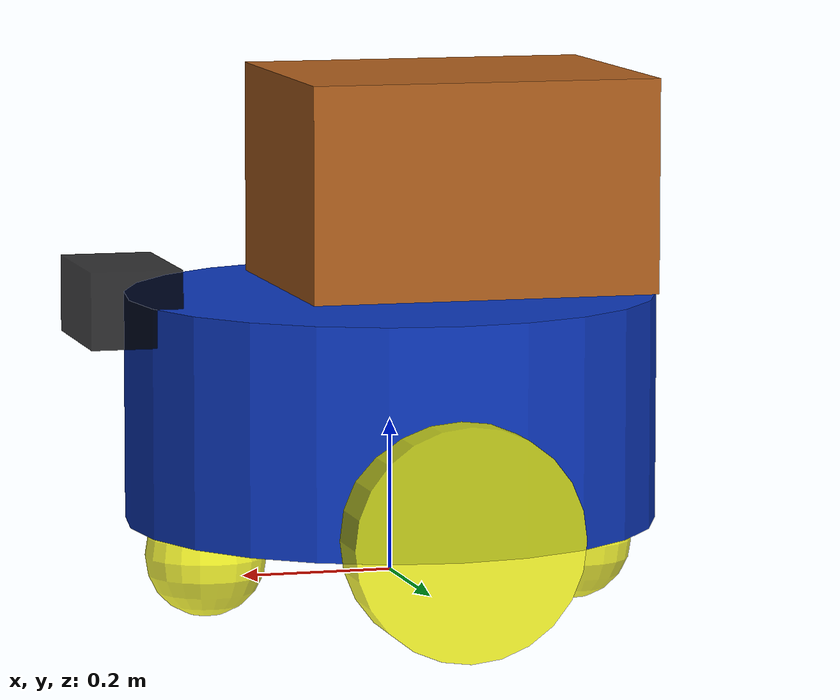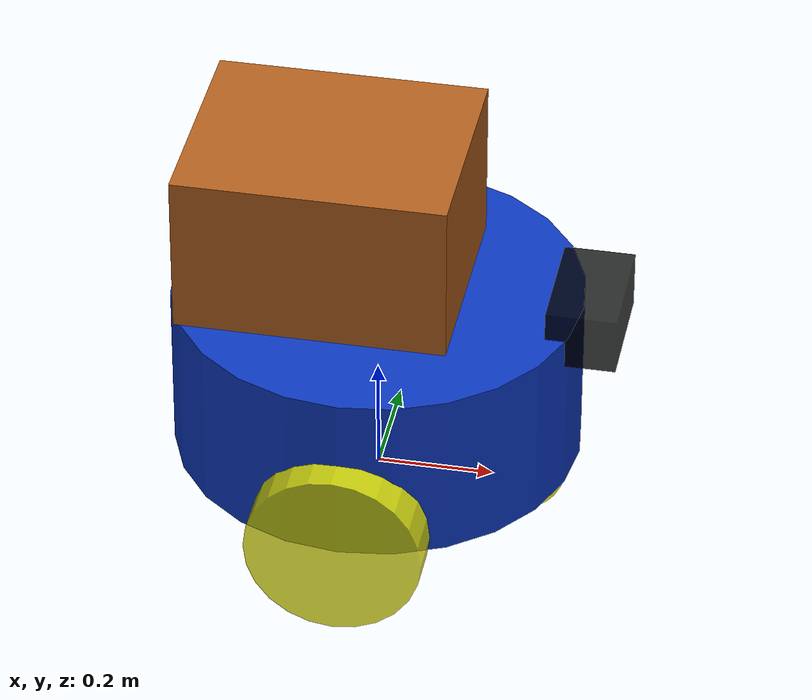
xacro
<?xml version="1.0"?>
<robot xmlns:xacro="http://www.ros.org/wiki/xacro" name="delivery_robot">
    <xacro:include filename="$(find delivery_robot_description)/models/delivery_robot/base.urdf.xacro" />
    <!-- sensors -->
    <xacro:include filename="$(find delivery_robot_description)/models/delivery_robot/sensor/camera.urdf.xacro" />
    <xacro:include filename="$(find delivery_robot_description)/models/delivery_robot/sensor/imu.urdf.xacro" />
    <xacro:include filename="$(find delivery_robot_description)/models/delivery_robot/sensor/laser.urdf.xacro" />
    <!-- actuators -->
    <xacro:include filename="$(find delivery_robot_description)/models/delivery_robot/actuator/wheel.urdf.xacro" />
    <xacro:include filename="$(find delivery_robot_description)/models/delivery_robot/actuator/caster.urdf.xacro" />
    <!-- plugins -->
    <xacro:include filename="$(find delivery_robot_description)/models/delivery_robot/plugin/gz_control_plugin.xacro" />
    <xacro:include filename="$(find delivery_robot_description)/models/delivery_robot/plugin/gz_sensor_plugin.xacro" />

    <xacro:base_xacro length="0.30" radius="0.35" />

    <xacro:imu_xacro xyz="0.0 0.0 0.18"/>
    <xacro:laser_xacro xyz="0.0 0.0 0.28"/>
    <xacro:rgbd_camera_xacro xyz="0.36 0.0 0.15"/>

    <xacro:wheel_xacro wheel_name="left_wheel" xyz="0 0.36 -0.12" />
    <xacro:wheel_xacro wheel_name="right_wheel" xyz="0 -0.36 -0.12" />
    <xacro:caster_xacro caster_name="front_wheel" xyz="0.25 0 -0.19" />
    <xacro:caster_xacro caster_name="back_wheel" xyz="-0.25 0 -0.19" />

    <xacro:gz_control_plugin />
    <xacro:gz_sensor_plugin />
</robot>

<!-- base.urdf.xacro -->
<robot xmlns:xacro="http://www.ros.org/wiki/xacro">
  <xacro:include filename="$(find delivery_robot_description)/models/delivery_robot/common_inertia.xacro"/>

  <xacro:macro name="base_xacro" params="length radius">
    <link name="base_footprint"/>

    <link name="base_link">
      <visual>
        <geometry>
          <cylinder radius="${radius}" length="${length}"/>
        </geometry>
        <material name="blue">
          <color rgba="0.05 0.22 0.75 1.0"/>
        </material>
      </visual>
      <collision>
        <geometry>
          <cylinder radius="${radius}" length="${length}"/>
        </geometry>
      </collision>
      <xacro:cylinder_inertia m="1.5" r="${radius}" h="${length}"/>
    </link>

    <joint name="base_footprint_joint" type="fixed">
      <parent link="base_footprint"/>
      <child link="base_link"/>
      <origin xyz="0 0 0.22" rpy="0 0 0"/>
    </joint>

    <link name="parcel_link">
      <visual>
        <geometry>
          <box size="0.46 0.38 0.28"/>
        </geometry>
        <material name="parcel_brown">
          <color rgba="0.70 0.38 0.12 1.0"/>
        </material>
      </visual>
      <collision>
        <geometry>
          <box size="0.46 0.38 0.28"/>
        </geometry>
      </collision>
      <xacro:box_inertia m="1.0" w="0.46" h="0.38" d="0.28"/>
    </link>

    <joint name="parcel_joint" type="fixed">
      <parent link="base_link"/>
      <child link="parcel_link"/>
      <origin xyz="-0.08 0 0.30" rpy="0 0 0"/>
    </joint>
  </xacro:macro>
</robot>

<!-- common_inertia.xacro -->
<robot xmlns:xacro="http://www.ros.org/wiki/xacro">
  <xacro:macro name="box_inertia" params="m w h d">
    <inertial>
      <mass value="${m}"/>
      <inertia
        ixx="${m * (h * h + d * d) / 12.0}" ixy="0" ixz="0"
        iyy="${m * (w * w + d * d) / 12.0}" iyz="0"
        izz="${m * (w * w + h * h) / 12.0}"/>
    </inertial>
  </xacro:macro>

  <xacro:macro name="cylinder_inertia" params="m r h">
    <inertial>
      <mass value="${m}"/>
      <inertia
        ixx="${m * (3 * r * r + h * h) / 12.0}" ixy="0" ixz="0"
        iyy="${m * (3 * r * r + h * h) / 12.0}" iyz="0"
        izz="${m * r * r / 2.0}"/>
    </inertial>
  </xacro:macro>

  <xacro:macro name="sphere_inertia" params="m r">
    <inertial>
      <mass value="${m}"/>
      <inertia
        ixx="${2 * m * r * r / 5.0}" ixy="0" ixz="0"
        iyy="${2 * m * r * r / 5.0}" iyz="0"
        izz="${2 * m * r * r / 5.0}"/>
    </inertial>
  </xacro:macro>
</robot>

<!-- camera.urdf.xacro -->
<robot xmlns:xacro="http://www.ros.org/wiki/xacro">
    <xacro:include filename="$(find delivery_robot_description)/models/delivery_robot/common_inertia.xacro" />

    <xacro:macro name="rgbd_camera_xacro" params="xyz">
        <link name="rgbd_camera_link">
            <visual>
                <origin xyz="0.0 0.0 0.0" rpy="0.0 0.0 0.0"/>
                <geometry>
                    <box size="0.12 0.20 0.10"/>
                </geometry>
                <material name="black">
                    <color rgba="0.0 0.0 0.0 0.8"/>
                </material>
            </visual>
            <collision>
                <geometry>
                    <box size="0.12 0.20 0.10"/>
                </geometry>
            </collision>
            <xacro:box_inertia m="0.2" w="0.12" h="0.20" d="0.10"/>
        </link>

        <link name="rgbd_camera_optical_link"/>

        <joint name="rgbd_camera_joint" type="fixed">
            <parent link="base_link"/>
            <child link="rgbd_camera_link"/>
            <origin xyz="${xyz}" rpy="0.0 0.0 0.0"/>
        </joint>
        <joint name="rgbd_camera_optical_joint" type="fixed">
            <parent link="rgbd_camera_link"/>
            <child link="rgbd_camera_optical_link"/>
            <origin xyz="0 0 0" rpy="${-pi / 2.0} 0 ${-pi / 2.0}"/>
        </joint>
    </xacro:macro>
</robot>

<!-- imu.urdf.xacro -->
<robot xmlns:xacro="http://www.ros.org/wiki/xacro">
    <xacro:include filename="$(find delivery_robot_description)/models/delivery_robot/common_inertia.xacro" />

    <xacro:macro name="imu_xacro" params="xyz">
        <link name="imu_link">

            <visual>
                <origin xyz="0.0 0.0 0.0" rpy="0.0 0.0 0.0"/>

                <geometry>
                    <box size="0.02 0.02 0.02"/>
                </geometry>

                <material name="black">
                    <color rgba="0.0 0.0 0.0 0.5"/>
                </material>
            </visual>

            <collision>
                <origin xyz="0.0 0.0 0.0" rpy="0.0 0.0 0.0"/>

                <geometry>
                    <box size="0.02 0.02 0.02"/>
                </geometry>

                <material name="black">
                    <color rgba="0.0 0.0 0.0 0.5"/>
                </material>
            </collision>

            <xacro:box_inertia m="0.05" w="0.02" h="0.02" d="0.02" />

        </link>

        <joint name="imu_joint" type="fixed">
            <parent link="base_link"/>
            <child link="imu_link"/>
            <origin xyz="${xyz}" rpy="0.0 0.0 0.0"/>
        </joint>
    </xacro:macro>
</robot>

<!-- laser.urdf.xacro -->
<robot xmlns:xacro="http://www.ros.org/wiki/xacro">
    <xacro:include filename="$(find delivery_robot_description)/models/delivery_robot/common_inertia.xacro" />

    <xacro:macro name="laser_xacro" params="xyz">

        <link name="laser_cylinder_link">

            <visual>
                <origin xyz="0.0 0.0 0.0" rpy="0.0 0.0 0.0"/>

                <geometry>
                    <cylinder radius="0.01" length="0.10"/>
                </geometry>

                <material name="black">
                    <color rgba="0.0 0.0 0.0 1.0"/>
                </material>
            </visual>

            <collision>
                <origin xyz="0.0 0.0 0.0" rpy="0.0 0.0 0.0"/>

                <geometry>
                    <cylinder radius="0.01" length="0.10"/>
                </geometry>

                <material name="black">
                    <color rgba="0.0 0.0 0.0 1.0"/>
                </material>
            </collision>

            <xacro:cylinder_inertia m="0.05" r="0.01" h="0.10"/>

        </link>

        <link name="laser_link">

            <visual>
                <origin xyz="0.0 0.0 0.0" rpy="0.0 0.0 0.0"/>

                <geometry>
                    <cylinder radius="0.02" length="0.02"/>
                </geometry>

                <material name="black">
                    <color rgba="0.0 0.0 0.0 1.0"/>
                </material>
            </visual>

            <collision>
                <origin xyz="0.0 0.0 0.0" rpy="0.0 0.0 0.0"/>

                <geometry>
                    <cylinder radius="0.02" length="0.02"/>
                </geometry>

                <material name="black">
                    <color rgba="0.0 0.0 0.0 1.0"/>
                </material>
            </collision>

            <xacro:cylinder_inertia m="0.10" r="0.02" h="0.02"/>

        </link>

        <joint name="laser_joint" type="fixed">
            <parent link="laser_cylinder_link"/>
            <child link="laser_link"/>
            <origin xyz="0.0 0.0 0.05" rpy="0.0 0.0 0.0"/>
        </joint>

        <joint name="laser_cylinder_joint" type="fixed">
            <parent link="base_link"/>
            <child link="laser_cylinder_link"/>
            <origin xyz="${xyz}" rpy="0.0 0.0 0.0"/>
        </joint>
    </xacro:macro>
</robot>

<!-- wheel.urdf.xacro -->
<robot xmlns:xacro="http://www.ros.org/wiki/xacro">
    <xacro:include filename="$(find delivery_robot_description)/models/delivery_robot/common_inertia.xacro" />

    <xacro:macro name="wheel_xacro" params="wheel_name xyz">
        <link name="${wheel_name}_link">

            <visual>
                <origin xyz="0.0 0.0 0.0" rpy="1.57079 0.0 0.0"/>

                <geometry>
                    <cylinder radius="0.15" length="0.08"/>
                </geometry>

                <material name="yellow">
                    <color rgba="1.0 1.0 0.0 0.8"/>
                </material>
            </visual>

            <collision>
                <origin xyz="0.0 0.0 0.0" rpy="1.57079 0.0 0.0"/>

                <geometry>
                    <cylinder radius="0.15" length="0.08"/>
                </geometry>

                <material name="yellow">
                    <color rgba="1.0 1.0 0.0 0.8"/>
                </material>
            </collision>

            <xacro:cylinder_inertia m="1.0" r="0.15" h="0.08"/>

        </link>

        <joint name="${wheel_name}_joint" type="continuous">
            <parent link="base_link"/>
            <child link="${wheel_name}_link"/>
            <origin xyz="${xyz}" rpy="0.0 0.0 0.0"/>
            <axis xyz="0 1 0"/>
        </joint>

        <gazebo reference="${wheel_name}_joint">
            <mu1 value = "20.0"/>
            <mu2 value = "20.0"/>
            <kp value = "1000000000.0"/>
            <kd value = "1.0"/>
        </gazebo>
    </xacro:macro>
</robot>

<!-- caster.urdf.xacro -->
<robot xmlns:xacro="http://www.ros.org/wiki/xacro">
    <xacro:include filename="$(find delivery_robot_description)/models/delivery_robot/common_inertia.xacro" />

    <xacro:macro name="caster_xacro" params="caster_name xyz">
        <link name="${caster_name}_link">

            <visual>
                <origin xyz="0.0 0.0 0.0" rpy="0.0 0.0 0.0"/>

                <geometry>
                    <sphere radius="0.08"/>
                </geometry>

                <material name="yellow">
                    <color rgba="1.0 1.0 0.0 0.8"/>
                </material>
            </visual>

            <collision>
                <origin xyz="0.0 0.0 0.0" rpy="0.0 0.0 0.0"/>

                <geometry>
                    <sphere radius="0.08"/>
                </geometry>

                <material name="yellow">
                    <color rgba="1.0 1.0 0.0 0.8"/>
                </material>
            </collision>

            <xacro:sphere_inertia m="0.30" r="0.08" />

        </link>

        <joint name="${caster_name}_joint" type="fixed">
            <parent link="base_link"/>
            <child link="${caster_name}_link"/>
            <origin xyz="${xyz}" rpy="0.0 0.0 0.0"/>
        </joint>

        <gazebo reference="${caster_name}_joint">
            <mu1 value = "0.0"/>
            <mu2 value = "0.0"/>
            <kp value = "1000000000.0"/>
            <kd value = "1.0"/>
        </gazebo>
    </xacro:macro>
</robot>
